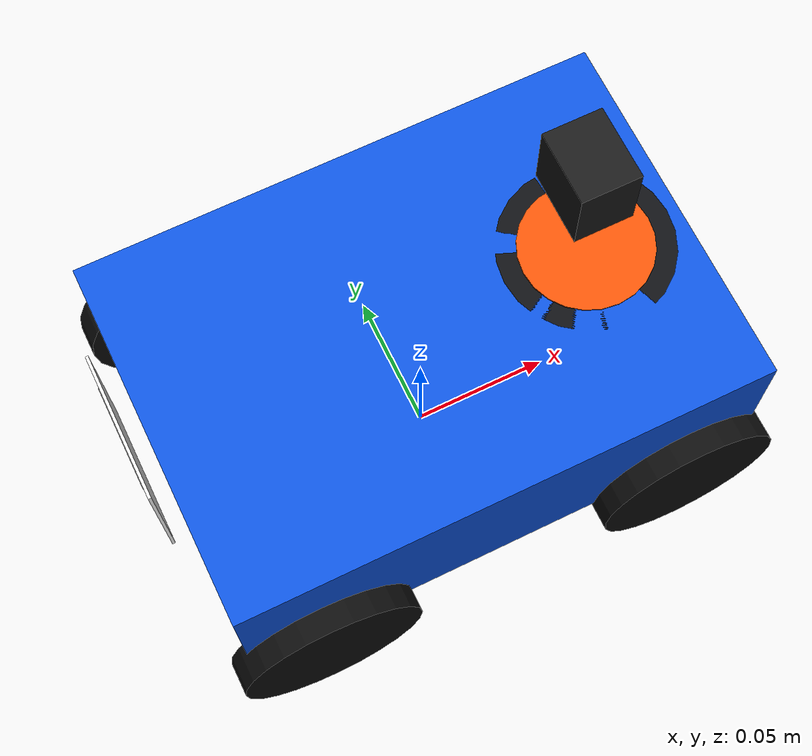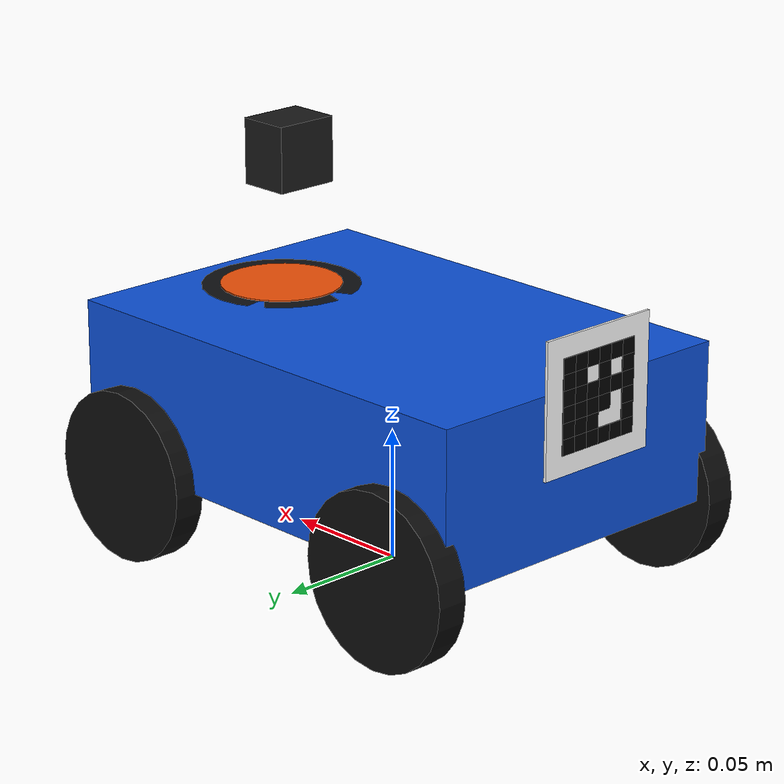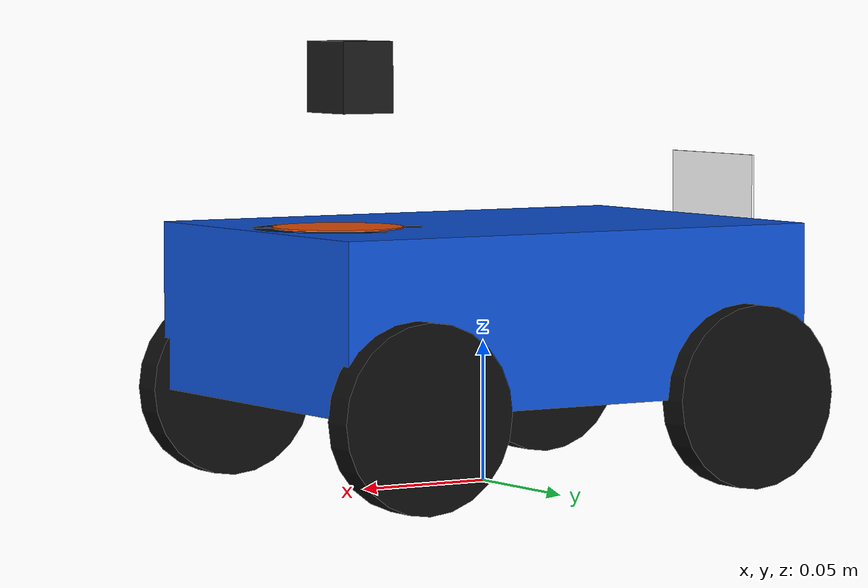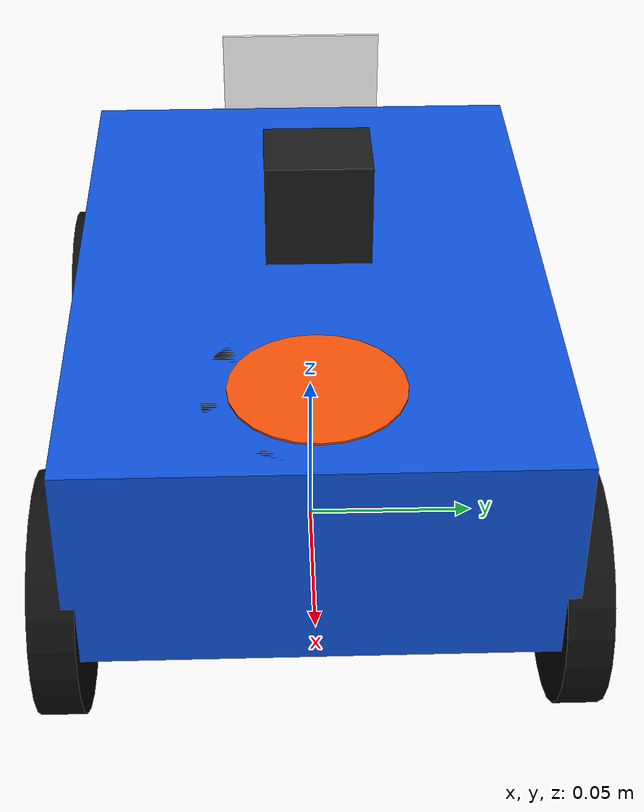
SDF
<sdf version="1.10"><model name="arena_car"><self_collide>false</self_collide><allow_auto_disable>false</allow_auto_disable><link name="chassis"><pose>0 0 0.0625 0 0 0</pose><inertial><pose>0 0 0.0 0 0 0</pose><mass>1.697</mass><inertia><ixx>0.0036909749999999996</ixx><ixy>0</ixy><ixz>0</ixz><iyy>0.0061657666666666685</iyy><iyz>0</iyz><izz>0.008838541666666666</izz></inertia></inertial><visual name="visual"><geometry><box><size>0.188 0.13 0.06</size></box></geometry><material><ambient>0.04 0.24 0.65 1</ambient><diffuse>0.05 0.32 0.85 1</diffuse><specular>0.2 0.2 0.2 1</specular></material></visual><visual name="rear_marker_id49_board"><pose>-0.1005 0.0
                0.027499999999999997
                0 0 3.1415926536</pose><geometry><box><size>0.001 0.05 0.05</size></box></geometry><material><ambient>1 1 1 1</ambient><diffuse>1 1 1 1</diffuse><specular>0 0 0 1</specular></material><cast_shadows>false</cast_shadows></visual><visual name="rear_marker_id49_ink_0_0"><pose>-0.101200000000148
            0.014499999999992854
            0.041999999999999996
            0 0 3.1415926536</pose><geometry><box><size>0.0004 0.0058 0.0058</size></box></geometry><material><ambient>0.002 0.002 0.002 1</ambient><diffuse>0.002 0.002 0.002 1</diffuse><specular>0 0 0 1</specular></material><cast_shadows>false</cast_shadows></visual><visual name="rear_marker_id49_ink_0_1"><pose>-0.10120000000008882
            0.008699999999992854
            0.041999999999999996
            0 0 3.1415926536</pose><geometry><box><size>0.0004 0.0058 0.0058</size></box></geometry><material><ambient>0.002 0.002 0.002 1</ambient><diffuse>0.002 0.002 0.002 1</diffuse><specular>0 0 0 1</specular></material><cast_shadows>false</cast_shadows></visual><visual name="rear_marker_id49_ink_0_2"><pose>-0.10120000000002961
            0.002899999999992855
            0.041999999999999996
            0 0 3.1415926536</pose><geometry><box><size>0.0004 0.0058 0.0058</size></box></geometry><material><ambient>0.002 0.002 0.002 1</ambient><diffuse>0.002 0.002 0.002 1</diffuse><specular>0 0 0 1</specular></material><cast_shadows>false</cast_shadows></visual><visual name="rear_marker_id49_ink_0_3"><pose>-0.10119999999997041
            -0.0029000000000071447
            0.041999999999999996
            0 0 3.1415926536</pose><geometry><box><size>0.0004 0.0058 0.0058</size></box></geometry><material><ambient>0.002 0.002 0.002 1</ambient><diffuse>0.002 0.002 0.002 1</diffuse><specular>0 0 0 1</specular></material><cast_shadows>false</cast_shadows></visual><visual name="rear_marker_id49_ink_0_4"><pose>-0.10119999999991121
            -0.008700000000007145
            0.041999999999999996
            0 0 3.1415926536</pose><geometry><box><size>0.0004 0.0058 0.0058</size></box></geometry><material><ambient>0.002 0.002 0.002 1</ambient><diffuse>0.002 0.002 0.002 1</diffuse><specular>0 0 0 1</specular></material><cast_shadows>false</cast_shadows></visual><visual name="rear_marker_id49_ink_0_5"><pose>-0.10119999999985202
            -0.014500000000007144
            0.041999999999999996
            0 0 3.1415926536</pose><geometry><box><size>0.0004 0.0058 0.0058</size></box></geometry><material><ambient>0.002 0.002 0.002 1</ambient><diffuse>0.002 0.002 0.002 1</diffuse><specular>0 0 0 1</specular></material><cast_shadows>false</cast_shadows></visual><visual name="rear_marker_id49_ink_1_0"><pose>-0.101200000000148
            0.014499999999992854
            0.036199999999999996
            0 0 3.1415926536</pose><geometry><box><size>0.0004 0.0058 0.0058</size></box></geometry><material><ambient>0.002 0.002 0.002 1</ambient><diffuse>0.002 0.002 0.002 1</diffuse><specular>0 0 0 1</specular></material><cast_shadows>false</cast_shadows></visual><visual name="rear_marker_id49_ink_1_1"><pose>-0.10120000000008882
            0.008699999999992854
            0.036199999999999996
            0 0 3.1415926536</pose><geometry><box><size>0.0004 0.0058 0.0058</size></box></geometry><material><ambient>0.002 0.002 0.002 1</ambient><diffuse>0.002 0.002 0.002 1</diffuse><specular>0 0 0 1</specular></material><cast_shadows>false</cast_shadows></visual><visual name="rear_marker_id49_ink_1_3"><pose>-0.10119999999997041
            -0.0029000000000071447
            0.036199999999999996
            0 0 3.1415926536</pose><geometry><box><size>0.0004 0.0058 0.0058</size></box></geometry><material><ambient>0.002 0.002 0.002 1</ambient><diffuse>0.002 0.002 0.002 1</diffuse><specular>0 0 0 1</specular></material><cast_shadows>false</cast_shadows></visual><visual name="rear_marker_id49_ink_1_5"><pose>-0.10119999999985202
            -0.014500000000007144
            0.036199999999999996
            0 0 3.1415926536</pose><geometry><box><size>0.0004 0.0058 0.0058</size></box></geometry><material><ambient>0.002 0.002 0.002 1</ambient><diffuse>0.002 0.002 0.002 1</diffuse><specular>0 0 0 1</specular></material><cast_shadows>false</cast_shadows></visual><visual name="rear_marker_id49_ink_2_0"><pose>-0.101200000000148
            0.014499999999992854
            0.030399999999999996
            0 0 3.1415926536</pose><geometry><box><size>0.0004 0.0058 0.0058</size></box></geometry><material><ambient>0.002 0.002 0.002 1</ambient><diffuse>0.002 0.002 0.002 1</diffuse><specular>0 0 0 1</specular></material><cast_shadows>false</cast_shadows></visual><visual name="rear_marker_id49_ink_2_1"><pose>-0.10120000000008882
            0.008699999999992854
            0.030399999999999996
            0 0 3.1415926536</pose><geometry><box><size>0.0004 0.0058 0.0058</size></box></geometry><material><ambient>0.002 0.002 0.002 1</ambient><diffuse>0.002 0.002 0.002 1</diffuse><specular>0 0 0 1</specular></material><cast_shadows>false</cast_shadows></visual><visual name="rear_marker_id49_ink_2_2"><pose>-0.10120000000002961
            0.002899999999992855
            0.030399999999999996
            0 0 3.1415926536</pose><geometry><box><size>0.0004 0.0058 0.0058</size></box></geometry><material><ambient>0.002 0.002 0.002 1</ambient><diffuse>0.002 0.002 0.002 1</diffuse><specular>0 0 0 1</specular></material><cast_shadows>false</cast_shadows></visual><visual name="rear_marker_id49_ink_2_3"><pose>-0.10119999999997041
            -0.0029000000000071447
            0.030399999999999996
            0 0 3.1415926536</pose><geometry><box><size>0.0004 0.0058 0.0058</size></box></geometry><material><ambient>0.002 0.002 0.002 1</ambient><diffuse>0.002 0.002 0.002 1</diffuse><specular>0 0 0 1</specular></material><cast_shadows>false</cast_shadows></visual><visual name="rear_marker_id49_ink_2_4"><pose>-0.10119999999991121
            -0.008700000000007145
            0.030399999999999996
            0 0 3.1415926536</pose><geometry><box><size>0.0004 0.0058 0.0058</size></box></geometry><material><ambient>0.002 0.002 0.002 1</ambient><diffuse>0.002 0.002 0.002 1</diffuse><specular>0 0 0 1</specular></material><cast_shadows>false</cast_shadows></visual><visual name="rear_marker_id49_ink_2_5"><pose>-0.10119999999985202
            -0.014500000000007144
            0.030399999999999996
            0 0 3.1415926536</pose><geometry><box><size>0.0004 0.0058 0.0058</size></box></geometry><material><ambient>0.002 0.002 0.002 1</ambient><diffuse>0.002 0.002 0.002 1</diffuse><specular>0 0 0 1</specular></material><cast_shadows>false</cast_shadows></visual><visual name="rear_marker_id49_ink_3_0"><pose>-0.101200000000148
            0.014499999999992854
            0.024599999999999997
            0 0 3.1415926536</pose><geometry><box><size>0.0004 0.0058 0.0058</size></box></geometry><material><ambient>0.002 0.002 0.002 1</ambient><diffuse>0.002 0.002 0.002 1</diffuse><specular>0 0 0 1</specular></material><cast_shadows>false</cast_shadows></visual><visual name="rear_marker_id49_ink_3_1"><pose>-0.10120000000008882
            0.008699999999992854
            0.024599999999999997
            0 0 3.1415926536</pose><geometry><box><size>0.0004 0.0058 0.0058</size></box></geometry><material><ambient>0.002 0.002 0.002 1</ambient><diffuse>0.002 0.002 0.002 1</diffuse><specular>0 0 0 1</specular></material><cast_shadows>false</cast_shadows></visual><visual name="rear_marker_id49_ink_3_2"><pose>-0.10120000000002961
            0.002899999999992855
            0.024599999999999997
            0 0 3.1415926536</pose><geometry><box><size>0.0004 0.0058 0.0058</size></box></geometry><material><ambient>0.002 0.002 0.002 1</ambient><diffuse>0.002 0.002 0.002 1</diffuse><specular>0 0 0 1</specular></material><cast_shadows>false</cast_shadows></visual><visual name="rear_marker_id49_ink_3_3"><pose>-0.10119999999997041
            -0.0029000000000071447
            0.024599999999999997
            0 0 3.1415926536</pose><geometry><box><size>0.0004 0.0058 0.0058</size></box></geometry><material><ambient>0.002 0.002 0.002 1</ambient><diffuse>0.002 0.002 0.002 1</diffuse><specular>0 0 0 1</specular></material><cast_shadows>false</cast_shadows></visual><visual name="rear_marker_id49_ink_3_5"><pose>-0.10119999999985202
            -0.014500000000007144
            0.024599999999999997
            0 0 3.1415926536</pose><geometry><box><size>0.0004 0.0058 0.0058</size></box></geometry><material><ambient>0.002 0.002 0.002 1</ambient><diffuse>0.002 0.002 0.002 1</diffuse><specular>0 0 0 1</specular></material><cast_shadows>false</cast_shadows></visual><visual name="rear_marker_id49_ink_4_0"><pose>-0.101200000000148
            0.014499999999992854
            0.018799999999999997
            0 0 3.1415926536</pose><geometry><box><size>0.0004 0.0058 0.0058</size></box></geometry><material><ambient>0.002 0.002 0.002 1</ambient><diffuse>0.002 0.002 0.002 1</diffuse><specular>0 0 0 1</specular></material><cast_shadows>false</cast_shadows></visual><visual name="rear_marker_id49_ink_4_1"><pose>-0.10120000000008882
            0.008699999999992854
            0.018799999999999997
            0 0 3.1415926536</pose><geometry><box><size>0.0004 0.0058 0.0058</size></box></geometry><material><ambient>0.002 0.002 0.002 1</ambient><diffuse>0.002 0.002 0.002 1</diffuse><specular>0 0 0 1</specular></material><cast_shadows>false</cast_shadows></visual><visual name="rear_marker_id49_ink_4_2"><pose>-0.10120000000002961
            0.002899999999992855
            0.018799999999999997
            0 0 3.1415926536</pose><geometry><box><size>0.0004 0.0058 0.0058</size></box></geometry><material><ambient>0.002 0.002 0.002 1</ambient><diffuse>0.002 0.002 0.002 1</diffuse><specular>0 0 0 1</specular></material><cast_shadows>false</cast_shadows></visual><visual name="rear_marker_id49_ink_4_5"><pose>-0.10119999999985202
            -0.014500000000007144
            0.018799999999999997
            0 0 3.1415926536</pose><geometry><box><size>0.0004 0.0058 0.0058</size></box></geometry><material><ambient>0.002 0.002 0.002 1</ambient><diffuse>0.002 0.002 0.002 1</diffuse><specular>0 0 0 1</specular></material><cast_shadows>false</cast_shadows></visual><visual name="rear_marker_id49_ink_5_0"><pose>-0.101200000000148
            0.014499999999992854
            0.012999999999999998
            0 0 3.1415926536</pose><geometry><box><size>0.0004 0.0058 0.0058</size></box></geometry><material><ambient>0.002 0.002 0.002 1</ambient><diffuse>0.002 0.002 0.002 1</diffuse><specular>0 0 0 1</specular></material><cast_shadows>false</cast_shadows></visual><visual name="rear_marker_id49_ink_5_1"><pose>-0.10120000000008882
            0.008699999999992854
            0.012999999999999998
            0 0 3.1415926536</pose><geometry><box><size>0.0004 0.0058 0.0058</size></box></geometry><material><ambient>0.002 0.002 0.002 1</ambient><diffuse>0.002 0.002 0.002 1</diffuse><specular>0 0 0 1</specular></material><cast_shadows>false</cast_shadows></visual><visual name="rear_marker_id49_ink_5_2"><pose>-0.10120000000002961
            0.002899999999992855
            0.012999999999999998
            0 0 3.1415926536</pose><geometry><box><size>0.0004 0.0058 0.0058</size></box></geometry><material><ambient>0.002 0.002 0.002 1</ambient><diffuse>0.002 0.002 0.002 1</diffuse><specular>0 0 0 1</specular></material><cast_shadows>false</cast_shadows></visual><visual name="rear_marker_id49_ink_5_3"><pose>-0.10119999999997041
            -0.0029000000000071447
            0.012999999999999998
            0 0 3.1415926536</pose><geometry><box><size>0.0004 0.0058 0.0058</size></box></geometry><material><ambient>0.002 0.002 0.002 1</ambient><diffuse>0.002 0.002 0.002 1</diffuse><specular>0 0 0 1</specular></material><cast_shadows>false</cast_shadows></visual><visual name="rear_marker_id49_ink_5_4"><pose>-0.10119999999991121
            -0.008700000000007145
            0.012999999999999998
            0 0 3.1415926536</pose><geometry><box><size>0.0004 0.0058 0.0058</size></box></geometry><material><ambient>0.002 0.002 0.002 1</ambient><diffuse>0.002 0.002 0.002 1</diffuse><specular>0 0 0 1</specular></material><cast_shadows>false</cast_shadows></visual><visual name="rear_marker_id49_ink_5_5"><pose>-0.10119999999985202
            -0.014500000000007144
            0.012999999999999998
            0 0 3.1415926536</pose><geometry><box><size>0.0004 0.0058 0.0058</size></box></geometry><material><ambient>0.002 0.002 0.002 1</ambient><diffuse>0.002 0.002 0.002 1</diffuse><specular>0 0 0 1</specular></material><cast_shadows>false</cast_shadows></visual><collision name="collision"><geometry><box><size>0.2 0.15 0.06</size></box></geometry></collision></link><frame attached_to="chassis" name="base_link"><pose relative_to="__model__">0 0 0 0 0 0</pose></frame><link name="b0183_link"><pose>0.055 0.0 0.145 0.0 0.0 0.0</pose><inertial><pose>0 0 0 0 0 0</pose><mass>0.01</mass><inertia><ixx>1.041666666666667e-06</ixx><ixy>0</ixy><ixz>0</ixz><iyy>8.541666666666668e-07</iyy><iyz>0</iyz><izz>8.541666666666668e-07</izz></inertia></inertial><visual name="body_visual"><geometry><box><size>0.02 0.025 0.025</size></box></geometry><material><ambient>0.08 0.08 0.08 1</ambient><diffuse>0.10 0.10 0.10 1</diffuse></material></visual><sensor name="b0183_rgb" type="camera"><camera name="color"><horizontal_fov>1.3089969389957472</horizontal_fov><image><width>1280</width><height>720</height><format>R8G8B8</format></image><clip><near>0.02</near><far>20.0</far></clip><lens><intrinsics><fx>834.0642386183716</fx><fy>834.0642386183715</fy><cx>640.0</cx><cy>360.0</cy><s>0.0</s></intrinsics></lens><optical_frame_id>camera_color_optical_frame</optical_frame_id></camera><always_on>true</always_on><update_rate>60.0</update_rate><visualize>false</visualize><topic>camera/color/image_raw</topic></sensor></link><joint name="b0183_fixed_joint" type="fixed"><parent>chassis</parent><child>b0183_link</child></joint><link name="lidar_link"><pose>0.06 0.0 0.095 0.0 0.0 0.0</pose><inertial><pose>0 0 0 0 0 0</pose><mass>0.11</mass><inertia><ixx>4.422916666666667e-05</ixx><ixy>0</ixy><ixz>0</ixz><iyy>4.422916666666667e-05</iyy><iyz>0</iyz><izz>6.599999999999999e-05</izz></inertia></inertial><visual name="lidar_body"><pose>0 0 -0.020 0 0 0</pose><geometry><cylinder><radius>0.03</radius><length>0.035</length></cylinder></geometry><material><ambient>0.045 0.045 0.05 1</ambient><diffuse>0.06 0.065 0.075 1</diffuse></material></visual><visual name="lidar_cap"><pose>0 0 -0.003 0 0 0</pose><geometry><cylinder><radius>0.023</radius><length>0.002</length></cylinder></geometry><material><ambient>0.9 0.27 0.025 1</ambient><diffuse>0.95 0.32 0.03 1</diffuse></material></visual><sensor name="rplidar_c1" type="gpu_lidar"><always_on>true</always_on><update_rate>500.0</update_rate><visualize>false</visualize><topic>/sim/lidar_instantaneous</topic><lidar><scan><horizontal><samples>500</samples><resolution>1</resolution><min_angle>-3.141592653589793</min_angle><max_angle>3.129026282975434</max_angle></horizontal></scan><range><min>0.05</min><max>12.0</max><resolution>0.015</resolution></range><noise><type>gaussian</type><mean>0</mean><stddev>0.0</stddev></noise></lidar></sensor></link><joint name="lidar_fixed_joint" type="fixed"><parent>chassis</parent><child>lidar_link</child></joint><link name="front_left_wheel"><pose>0.0675 0.0675 0.0325 -1.5707963267948966 0 0</pose><inertial><mass>0.04</mass><inertia><ixx>1.1042500000000001e-05</ixx><ixy>0</ixy><ixz>0</ixz><iyy>1.1042500000000001e-05</iyy><iyz>0</iyz><izz>2.1125000000000002e-05</izz></inertia></inertial><visual name="visual"><geometry><cylinder><radius>0.0325</radius><length>0.012</length></cylinder></geometry><material><ambient>0.03 0.03 0.03 1</ambient><diffuse>0.05 0.05 0.05 1</diffuse></material></visual><collision name="collision"><geometry><cylinder><radius>0.0325</radius><length>0.012</length></cylinder></geometry><surface><friction><ode><mu>0.9</mu><mu2>0.9</mu2><fdir1>0 0 1</fdir1></ode></friction></surface></collision></link><link name="front_right_wheel"><pose>0.0675 -0.0675 0.0325 -1.5707963267948966 0 0</pose><inertial><mass>0.04</mass><inertia><ixx>1.1042500000000001e-05</ixx><ixy>0</ixy><ixz>0</ixz><iyy>1.1042500000000001e-05</iyy><iyz>0</iyz><izz>2.1125000000000002e-05</izz></inertia></inertial><visual name="visual"><geometry><cylinder><radius>0.0325</radius><length>0.012</length></cylinder></geometry><material><ambient>0.03 0.03 0.03 1</ambient><diffuse>0.05 0.05 0.05 1</diffuse></material></visual><collision name="collision"><geometry><cylinder><radius>0.0325</radius><length>0.012</length></cylinder></geometry><surface><friction><ode><mu>0.9</mu><mu2>0.9</mu2><fdir1>0 0 1</fdir1></ode></friction></surface></collision></link><link name="rear_left_wheel"><pose>-0.0675 0.0675 0.0325 -1.5707963267948966 0 0</pose><inertial><mass>0.04</mass><inertia><ixx>1.1042500000000001e-05</ixx><ixy>0</ixy><ixz>0</ixz><iyy>1.1042500000000001e-05</iyy><iyz>0</iyz><izz>2.1125000000000002e-05</izz></inertia></inertial><visual name="visual"><geometry><cylinder><radius>0.0325</radius><length>0.012</length></cylinder></geometry><material><ambient>0.03 0.03 0.03 1</ambient><diffuse>0.05 0.05 0.05 1</diffuse></material></visual><collision name="collision"><geometry><cylinder><radius>0.0325</radius><length>0.012</length></cylinder></geometry><surface><friction><ode><mu>0.9</mu><mu2>0.9</mu2><fdir1>0 0 1</fdir1></ode></friction></surface></collision></link><link name="rear_right_wheel"><pose>-0.0675 -0.0675 0.0325 -1.5707963267948966 0 0</pose><inertial><mass>0.04</mass><inertia><ixx>1.1042500000000001e-05</ixx><ixy>0</ixy><ixz>0</ixz><iyy>1.1042500000000001e-05</iyy><iyz>0</iyz><izz>2.1125000000000002e-05</izz></inertia></inertial><visual name="visual"><geometry><cylinder><radius>0.0325</radius><length>0.012</length></cylinder></geometry><material><ambient>0.03 0.03 0.03 1</ambient><diffuse>0.05 0.05 0.05 1</diffuse></material></visual><collision name="collision"><geometry><cylinder><radius>0.0325</radius><length>0.012</length></cylinder></geometry><surface><friction><ode><mu>0.9</mu><mu2>0.9</mu2><fdir1>0 0 1</fdir1></ode></friction></surface></collision></link><link name="front_left_steering_link"><pose>0.0675 0.0675 0.0325 0 0 0</pose><inertial><pose>0 0 0 0 0 0</pose><mass>0.01</mass><inertia><ixx>1.7333333333333332e-07</ixx><ixy>0</ixy><ixz>0</ixz><iyy>1.7333333333333332e-07</iyy><iyz>0</iyz><izz>1.0666666666666667e-07</izz></inertia></inertial><visual name="visual"><geometry><cylinder><radius>0.004</radius><length>0.012</length></cylinder></geometry><material><ambient>0.8 0.8 0.8 1</ambient><diffuse>0.8 0.8 0.8 1</diffuse></material></visual></link><link name="front_right_steering_link"><pose>0.0675 -0.0675 0.0325 0 0 0</pose><inertial><pose>0 0 0 0 0 0</pose><mass>0.01</mass><inertia><ixx>1.7333333333333332e-07</ixx><ixy>0</ixy><ixz>0</ixz><iyy>1.7333333333333332e-07</iyy><iyz>0</iyz><izz>1.0666666666666667e-07</izz></inertia></inertial><visual name="visual"><geometry><cylinder><radius>0.004</radius><length>0.012</length></cylinder></geometry><material><ambient>0.8 0.8 0.8 1</ambient><diffuse>0.8 0.8 0.8 1</diffuse></material></visual></link><joint name="front_left_steering_joint" type="revolute"><parent>chassis</parent><child>front_left_steering_link</child><axis><xyz>0 0 1</xyz><limit><lower>-0.45</lower><upper>0.45</upper><effort>5.0</effort><velocity>8.0</velocity></limit></axis></joint><joint name="front_right_steering_joint" type="revolute"><parent>chassis</parent><child>front_right_steering_link</child><axis><xyz>0 0 1</xyz><limit><lower>-0.45</lower><upper>0.45</upper><effort>5.0</effort><velocity>8.0</velocity></limit></axis></joint><joint name="front_left_wheel_joint" type="revolute"><parent>front_left_steering_link</parent><child>front_left_wheel</child><axis><xyz>0 0 1</xyz><limit><lower>-1.79769e+308</lower><upper>1.79769e+308</upper><effort>5.0</effort><velocity>1500.0</velocity></limit><dynamics><damping>5e-06</damping></dynamics></axis></joint><joint name="front_right_wheel_joint" type="revolute"><parent>front_right_steering_link</parent><child>front_right_wheel</child><axis><xyz>0 0 1</xyz><limit><lower>-1.79769e+308</lower><upper>1.79769e+308</upper><effort>5.0</effort><velocity>1500.0</velocity></limit><dynamics><damping>5e-06</damping></dynamics></axis></joint><joint name="rear_left_wheel_joint" type="revolute"><parent>chassis</parent><child>rear_left_wheel</child><axis><xyz>0 0 1</xyz><limit><lower>-1.79769e+308</lower><upper>1.79769e+308</upper><effort>5.0</effort><velocity>1500.0</velocity></limit><dynamics><damping>5e-06</damping></dynamics></axis></joint><joint name="rear_right_wheel_joint" type="revolute"><parent>chassis</parent><child>rear_right_wheel</child><axis><xyz>0 0 1</xyz><limit><lower>-1.79769e+308</lower><upper>1.79769e+308</upper><effort>5.0</effort><velocity>1500.0</velocity></limit><dynamics><damping>5e-06</damping></dynamics></axis></joint><plugin filename="arena-single-motor-system" name="arena::SingleMotorDrive"><wheel_radius>0.0325</wheel_radius><wheelbase>0.135</wheelbase><track_width>0.135</track_width><steering_limit>0.45</steering_limit><max_speed>5.5555555556</max_speed><gear_ratio>15.0</gear_ratio><gear_efficiency>1.0</gear_efficiency><motor_torque_limit>0.06</motor_torque_limit><motor_brake_torque_limit>0.045</motor_brake_torque_limit><motor_free_speed>1884.9555921539</motor_free_speed><motor_response_time>0.04</motor_response_time><speed_kp>0.1</speed_kp><speed_ki>0.2</speed_ki><acceleration_limit>3.0</acceleration_limit><command_timeout>0.5</command_timeout><carrier_drag>0.0</carrier_drag><differential_viscosity>0.0</differential_viscosity><differential_torque_limit>0.0</differential_torque_limit><steering_gain>0.4</steering_gain><steering_integral_gain>0.25</steering_integral_gain><steering_velocity_gain>0.003</steering_velocity_gain><steering_torque_limit>0.12</steering_torque_limit><steering_rate_limit>4.0</steering_rate_limit></plugin><plugin filename="gz-sim-wheel-slip-system" name="gz::sim::systems::WheelSlip"><wheel link_name="front_left_wheel"><slip_compliance_lateral>0.02</slip_compliance_lateral><slip_compliance_longitudinal>0.02</slip_compliance_longitudinal><wheel_normal_force>4.905</wheel_normal_force><wheel_radius>0.0325</wheel_radius></wheel><wheel link_name="front_right_wheel"><slip_compliance_lateral>0.02</slip_compliance_lateral><slip_compliance_longitudinal>0.02</slip_compliance_longitudinal><wheel_normal_force>4.905</wheel_normal_force><wheel_radius>0.0325</wheel_radius></wheel><wheel link_name="rear_left_wheel"><slip_compliance_lateral>0.02</slip_compliance_lateral><slip_compliance_longitudinal>0.02</slip_compliance_longitudinal><wheel_normal_force>4.905</wheel_normal_force><wheel_radius>0.0325</wheel_radius></wheel><wheel link_name="rear_right_wheel"><slip_compliance_lateral>0.02</slip_compliance_lateral><slip_compliance_longitudinal>0.02</slip_compliance_longitudinal><wheel_normal_force>4.905</wheel_normal_force><wheel_radius>0.0325</wheel_radius></wheel></plugin><plugin filename="gz-sim-joint-state-publisher-system" name="gz::sim::systems::JointStatePublisher"><topic>/model/arena_car/joint_state</topic></plugin><link name="lsm6dsox_link"><pose>0.0 0.0 0.06 0 0 0</pose><inertial><mass>0.003</mass><inertia><ixx>0.0000001</ixx><iyy>0.0000001</iyy><izz>0.0000001</izz></inertia></inertial><sensor name="lsm6dsox_imu" type="imu"><topic>/imu/data</topic><update_rate>208.0</update_rate><always_on>true</always_on><imu><angular_velocity><x><noise type="gaussian"><mean>0</mean><stddev>0.001</stddev></noise></x><y><noise type="gaussian"><mean>0</mean><stddev>0.001</stddev></noise></y><z><noise type="gaussian"><mean>0</mean><stddev>0.001</stddev></noise></z></angular_velocity><linear_acceleration><x><noise type="gaussian"><mean>0</mean><stddev>0.01</stddev></noise></x><y><noise type="gaussian"><mean>0</mean><stddev>0.01</stddev></noise></y><z><noise type="gaussian"><mean>0</mean><stddev>0.01</stddev></noise></z></linear_acceleration></imu></sensor></link><joint name="lsm6dsox_fixed_joint" type="fixed"><parent>chassis</parent><child>lsm6dsox_link</child></joint></model></sdf>
